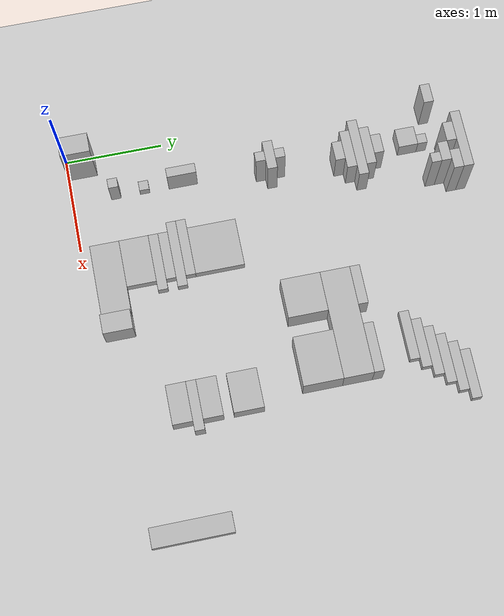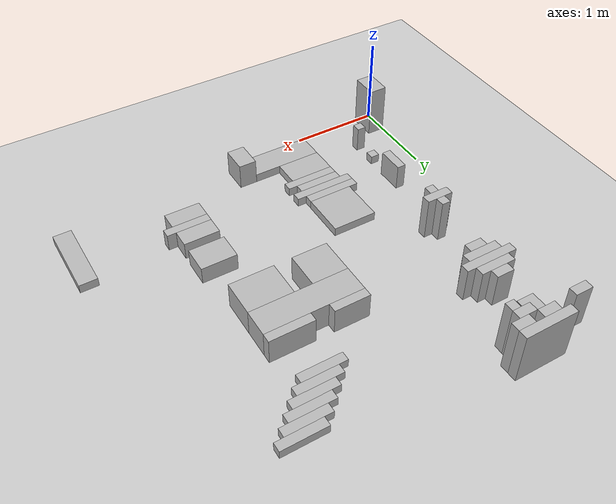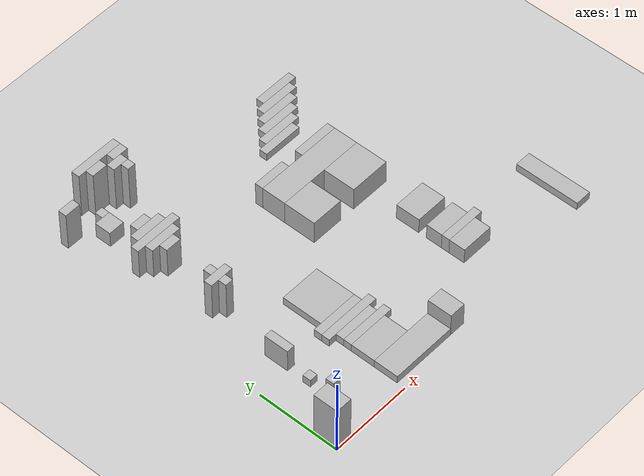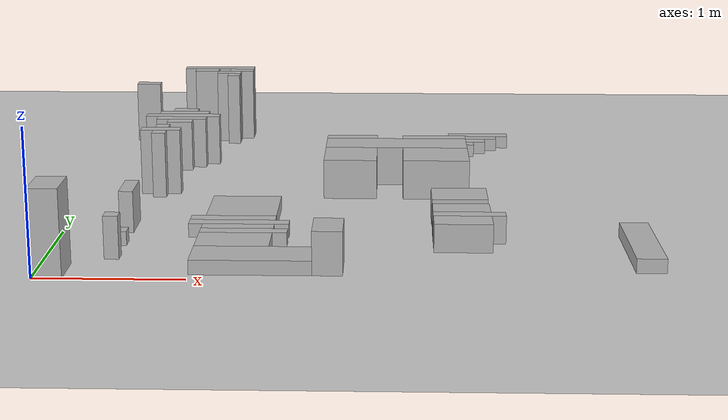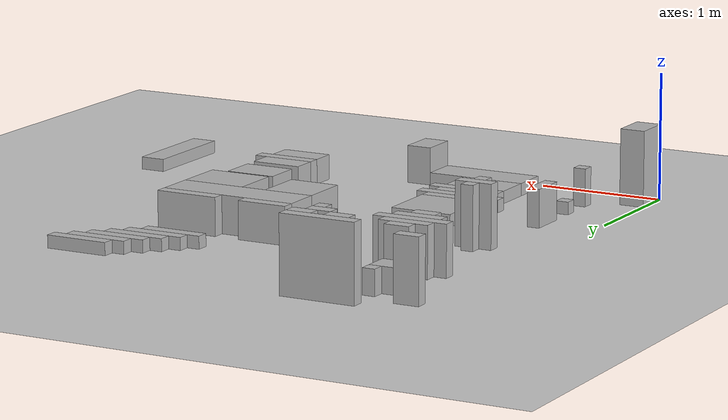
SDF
<?xml version="1.0" ?>
<sdf version="1.6">
  <world name="obstacles">
    <plugin name="gazebo_ros_factory" filename="libgazebo_ros_factory.so"/>

    <!-- A global light source -->
    <include>
      <uri>model://sun</uri>
    </include>
    <!-- A ground plane -->
    <include>
      <uri>model://ground_plane</uri>
    </include>

    <model name="box_0">
      <static>true</static>
      <link name="link_0">
        <visual name="visual_0">
          <pose>0.1 0.15 0.3 0 0 0</pose>
          <geometry>
            <box>
              <size>0.2 0.3 0.6</size>
            </box>
          </geometry>
        </visual>
        <collision name="collision_0">
          <pose>0.1 0.15 0.3 0 0 0</pose>
          <geometry>
            <box>
              <size>0.2 0.3 0.6</size>
            </box>
          </geometry>
        </collision>
      </link>
    </model>

    <model name="box_1">
      <static>true</static>
      <link name="link_1">
        <visual name="visual_1">
          <pose>1.4 0.25 0.05 0 0 0</pose>
          <geometry>
            <box>
              <size>0.8 0.3 0.1</size>
            </box>
          </geometry>
        </visual>
        <collision name="collision_1">
          <pose>1.4 0.25 0.05 0 0 0</pose>
          <geometry>
            <box>
              <size>0.8 0.3 0.1</size>
            </box>
          </geometry>
        </collision>
      </link>
    </model>

    <model name="box_2">
      <static>true</static>
      <link name="link_2">
        <visual name="visual_2">
          <pose>1.9 0.25 0.15 0 0 0</pose>
          <geometry>
            <box>
              <size>0.2 0.3 0.3</size>
            </box>
          </geometry>
        </visual>
        <collision name="collision_2">
          <pose>1.9 0.25 0.15 0 0 0</pose>
          <geometry>
            <box>
              <size>0.2 0.3 0.3</size>
            </box>
          </geometry>
        </collision>
      </link>
    </model>

    <model name="box_3">
      <static>true</static>
      <link name="link_3">
        <visual name="visual_3">
          <pose>4 0.6 0.05 0 0 0</pose>
          <geometry>
            <box>
              <size>0.2 0.8 0.1</size>
            </box>
          </geometry>
        </visual>
        <collision name="collision_3">
          <pose>4 0.6 0.05 0 0 0</pose>
          <geometry>
            <box>
              <size>0.2 0.8 0.1</size>
            </box>
          </geometry>
        </collision>
      </link>
    </model>

    <model name="box_4">
      <static>true</static>
      <link name="link_4">
        <visual name="visual_4">
          <pose>0.45 0.45 0.15 0 0 0</pose>
          <geometry>
            <box>
              <size>0.1 0.1 0.3</size>
            </box>
          </geometry>
        </visual>
        <collision name="collision_4">
          <pose>0.45 0.45 0.15 0 0 0</pose>
          <geometry>
            <box>
              <size>0.1 0.1 0.3</size>
            </box>
          </geometry>
        </collision>
      </link>
    </model>

    <model name="box_5">
      <static>true</static>
      <link name="link_5">
        <visual name="visual_5">
          <pose>1.25 0.55 0.05 0 0 0</pose>
          <geometry>
            <box>
              <size>0.5 0.3 0.1</size>
            </box>
          </geometry>
        </visual>
        <collision name="collision_5">
          <pose>1.25 0.55 0.05 0 0 0</pose>
          <geometry>
            <box>
              <size>0.5 0.3 0.1</size>
            </box>
          </geometry>
        </collision>
      </link>
    </model>

    <model name="box_6">
      <static>true</static>
      <link name="link_6">
        <visual name="visual_6">
          <pose>2.8 0.7 0.1 0 0 0</pose>
          <geometry>
            <box>
              <size>0.4 0.2 0.2</size>
            </box>
          </geometry>
        </visual>
        <collision name="collision_6">
          <pose>2.8 0.7 0.1 0 0 0</pose>
          <geometry>
            <box>
              <size>0.4 0.2 0.2</size>
            </box>
          </geometry>
        </collision>
      </link>
    </model>

    <model name="box_7">
      <static>true</static>
      <link name="link_7">
        <visual name="visual_7">
          <pose>0.45 0.75 0.05 0 0 0</pose>
          <geometry>
            <box>
              <size>0.1 0.1 0.1</size>
            </box>
          </geometry>
        </visual>
        <collision name="collision_7">
          <pose>0.45 0.75 0.05 0 0 0</pose>
          <geometry>
            <box>
              <size>0.1 0.1 0.1</size>
            </box>
          </geometry>
        </collision>
      </link>
    </model>

    <model name="box_8">
      <static>true</static>
      <link name="link_8">
        <visual name="visual_8">
          <pose>1.3 0.75 0.05 0 0 0</pose>
          <geometry>
            <box>
              <size>0.6 0.1 0.1</size>
            </box>
          </geometry>
        </visual>
        <collision name="collision_8">
          <pose>1.3 0.75 0.05 0 0 0</pose>
          <geometry>
            <box>
              <size>0.6 0.1 0.1</size>
            </box>
          </geometry>
        </collision>
      </link>
    </model>

    <model name="box_9">
      <static>true</static>
      <link name="link_9">
        <visual name="visual_9">
          <pose>1.25 0.85 0.05 0 0 0</pose>
          <geometry>
            <box>
              <size>0.5 0.1 0.1</size>
            </box>
          </geometry>
        </visual>
        <collision name="collision_9">
          <pose>1.25 0.85 0.05 0 0 0</pose>
          <geometry>
            <box>
              <size>0.5 0.1 0.1</size>
            </box>
          </geometry>
        </collision>
      </link>
    </model>

    <model name="box_10">
      <static>true</static>
      <link name="link_10">
        <visual name="visual_10">
          <pose>2.85 0.85 0.1 0 0 0</pose>
          <geometry>
            <box>
              <size>0.5 0.1 0.2</size>
            </box>
          </geometry>
        </visual>
        <collision name="collision_10">
          <pose>2.85 0.85 0.1 0 0 0</pose>
          <geometry>
            <box>
              <size>0.5 0.1 0.2</size>
            </box>
          </geometry>
        </collision>
      </link>
    </model>

    <model name="box_11">
      <static>true</static>
      <link name="link_11">
        <visual name="visual_11">
          <pose>1.25 0.95 0.05 0 0 0</pose>
          <geometry>
            <box>
              <size>0.7 0.1 0.1</size>
            </box>
          </geometry>
        </visual>
        <collision name="collision_11">
          <pose>1.25 0.95 0.05 0 0 0</pose>
          <geometry>
            <box>
              <size>0.7 0.1 0.1</size>
            </box>
          </geometry>
        </collision>
      </link>
    </model>

    <model name="box_12">
      <static>true</static>
      <link name="link_12">
        <visual name="visual_12">
          <pose>2.8 1 0.1 0 0 0</pose>
          <geometry>
            <box>
              <size>0.4 0.2 0.2</size>
            </box>
          </geometry>
        </visual>
        <collision name="collision_12">
          <pose>2.8 1 0.1 0 0 0</pose>
          <geometry>
            <box>
              <size>0.4 0.2 0.2</size>
            </box>
          </geometry>
        </collision>
      </link>
    </model>

    <model name="box_13">
      <static>true</static>
      <link name="link_13">
        <visual name="visual_13">
          <pose>0.45 1.15 0.15 0 0 0</pose>
          <geometry>
            <box>
              <size>0.1 0.3 0.3</size>
            </box>
          </geometry>
        </visual>
        <collision name="collision_13">
          <pose>0.45 1.15 0.15 0 0 0</pose>
          <geometry>
            <box>
              <size>0.1 0.3 0.3</size>
            </box>
          </geometry>
        </collision>
      </link>
    </model>

    <model name="box_14">
      <static>true</static>
      <link name="link_14">
        <visual name="visual_14">
          <pose>1.2 1.05 0.05 0 0 0</pose>
          <geometry>
            <box>
              <size>0.6 0.1 0.1</size>
            </box>
          </geometry>
        </visual>
        <collision name="collision_14">
          <pose>1.2 1.05 0.05 0 0 0</pose>
          <geometry>
            <box>
              <size>0.6 0.1 0.1</size>
            </box>
          </geometry>
        </collision>
      </link>
    </model>

    <model name="box_15">
      <static>true</static>
      <link name="link_15">
        <visual name="visual_15">
          <pose>1.25 1.35 0.05 0 0 0</pose>
          <geometry>
            <box>
              <size>0.5 0.5 0.1</size>
            </box>
          </geometry>
        </visual>
        <collision name="collision_15">
          <pose>1.25 1.35 0.05 0 0 0</pose>
          <geometry>
            <box>
              <size>0.5 0.5 0.1</size>
            </box>
          </geometry>
        </collision>
      </link>
    </model>

    <model name="box_16">
      <static>true</static>
      <link name="link_16">
        <visual name="visual_16">
          <pose>2.8 1.35 0.1 0 0 0</pose>
          <geometry>
            <box>
              <size>0.4 0.3 0.2</size>
            </box>
          </geometry>
        </visual>
        <collision name="collision_16">
          <pose>2.8 1.35 0.1 0 0 0</pose>
          <geometry>
            <box>
              <size>0.4 0.3 0.2</size>
            </box>
          </geometry>
        </collision>
      </link>
    </model>

    <model name="box_17">
      <static>true</static>
      <link name="link_17">
        <visual name="visual_17">
          <pose>0.55 1.95 0.25 0 0 0</pose>
          <geometry>
            <box>
              <size>0.1 0.1 0.5</size>
            </box>
          </geometry>
        </visual>
        <collision name="collision_17">
          <pose>0.55 1.95 0.25 0 0 0</pose>
          <geometry>
            <box>
              <size>0.1 0.1 0.5</size>
            </box>
          </geometry>
        </collision>
      </link>
    </model>

    <model name="box_18">
      <static>true</static>
      <link name="link_18">
        <visual name="visual_18">
          <pose>2 2.1 0.15 0 0 0</pose>
          <geometry>
            <box>
              <size>0.4 0.4 0.3</size>
            </box>
          </geometry>
        </visual>
        <collision name="collision_18">
          <pose>2 2.1 0.15 0 0 0</pose>
          <geometry>
            <box>
              <size>0.4 0.4 0.3</size>
            </box>
          </geometry>
        </collision>
      </link>
    </model>

    <model name="box_19">
      <static>true</static>
      <link name="link_19">
        <visual name="visual_19">
          <pose>2.65 2.1 0.15 0 0 0</pose>
          <geometry>
            <box>
              <size>0.5 0.4 0.3</size>
            </box>
          </geometry>
        </visual>
        <collision name="collision_19">
          <pose>2.65 2.1 0.15 0 0 0</pose>
          <geometry>
            <box>
              <size>0.5 0.4 0.3</size>
            </box>
          </geometry>
        </collision>
      </link>
    </model>

    <model name="box_20">
      <static>true</static>
      <link name="link_20">
        <visual name="visual_20">
          <pose>0.55 2.05 0.25 0 0 0</pose>
          <geometry>
            <box>
              <size>0.3 0.1 0.5</size>
            </box>
          </geometry>
        </visual>
        <collision name="collision_20">
          <pose>0.55 2.05 0.25 0 0 0</pose>
          <geometry>
            <box>
              <size>0.3 0.1 0.5</size>
            </box>
          </geometry>
        </collision>
      </link>
    </model>

    <model name="box_21">
      <static>true</static>
      <link name="link_21">
        <visual name="visual_21">
          <pose>0.55 2.15 0.25 0 0 0</pose>
          <geometry>
            <box>
              <size>0.1 0.1 0.5</size>
            </box>
          </geometry>
        </visual>
        <collision name="collision_21">
          <pose>0.55 2.15 0.25 0 0 0</pose>
          <geometry>
            <box>
              <size>0.1 0.1 0.5</size>
            </box>
          </geometry>
        </collision>
      </link>
    </model>

    <model name="box_22">
      <static>true</static>
      <link name="link_22">
        <visual name="visual_22">
          <pose>2.35 2.45 0.15 0 0 0</pose>
          <geometry>
            <box>
              <size>1.1 0.3 0.3</size>
            </box>
          </geometry>
        </visual>
        <collision name="collision_22">
          <pose>2.35 2.45 0.15 0 0 0</pose>
          <geometry>
            <box>
              <size>1.1 0.3 0.3</size>
            </box>
          </geometry>
        </collision>
      </link>
    </model>

    <model name="box_23">
      <static>true</static>
      <link name="link_23">
        <visual name="visual_23">
          <pose>2 2.65 0.15 0 0 0</pose>
          <geometry>
            <box>
              <size>0.4 0.1 0.3</size>
            </box>
          </geometry>
        </visual>
        <collision name="collision_23">
          <pose>2 2.65 0.15 0 0 0</pose>
          <geometry>
            <box>
              <size>0.4 0.1 0.3</size>
            </box>
          </geometry>
        </collision>
      </link>
    </model>

    <model name="box_24">
      <static>true</static>
      <link name="link_24">
        <visual name="visual_24">
          <pose>2.65 2.65 0.15 0 0 0</pose>
          <geometry>
            <box>
              <size>0.5 0.1 0.3</size>
            </box>
          </geometry>
        </visual>
        <collision name="collision_24">
          <pose>2.65 2.65 0.15 0 0 0</pose>
          <geometry>
            <box>
              <size>0.5 0.1 0.3</size>
            </box>
          </geometry>
        </collision>
      </link>
    </model>

    <model name="box_25">
      <static>true</static>
      <link name="link_25">
        <visual name="visual_25">
          <pose>0.6 2.75 0.2 0 0 0</pose>
          <geometry>
            <box>
              <size>0.2 0.1 0.4</size>
            </box>
          </geometry>
        </visual>
        <collision name="collision_25">
          <pose>0.6 2.75 0.2 0 0 0</pose>
          <geometry>
            <box>
              <size>0.2 0.1 0.4</size>
            </box>
          </geometry>
        </collision>
      </link>
    </model>

    <model name="box_26">
      <static>true</static>
      <link name="link_26">
        <visual name="visual_26">
          <pose>0.6 2.85 0.2 0 0 0</pose>
          <geometry>
            <box>
              <size>0.4 0.1 0.4</size>
            </box>
          </geometry>
        </visual>
        <collision name="collision_26">
          <pose>0.6 2.85 0.2 0 0 0</pose>
          <geometry>
            <box>
              <size>0.4 0.1 0.4</size>
            </box>
          </geometry>
        </collision>
      </link>
    </model>

    <model name="box_27">
      <static>true</static>
      <link name="link_27">
        <visual name="visual_27">
          <pose>0.6 2.95 0.2 0 0 0</pose>
          <geometry>
            <box>
              <size>0.6 0.1 0.4</size>
            </box>
          </geometry>
        </visual>
        <collision name="collision_27">
          <pose>0.6 2.95 0.2 0 0 0</pose>
          <geometry>
            <box>
              <size>0.6 0.1 0.4</size>
            </box>
          </geometry>
        </collision>
      </link>
    </model>

    <model name="box_28">
      <static>true</static>
      <link name="link_28">
        <visual name="visual_28">
          <pose>0.6 3.05 0.2 0 0 0</pose>
          <geometry>
            <box>
              <size>0.4 0.1 0.4</size>
            </box>
          </geometry>
        </visual>
        <collision name="collision_28">
          <pose>0.6 3.05 0.2 0 0 0</pose>
          <geometry>
            <box>
              <size>0.4 0.1 0.4</size>
            </box>
          </geometry>
        </collision>
      </link>
    </model>

    <model name="box_29">
      <static>true</static>
      <link name="link_29">
        <visual name="visual_29">
          <pose>2.55 3.05 0.05 0 0 0</pose>
          <geometry>
            <box>
              <size>0.5 0.1 0.1</size>
            </box>
          </geometry>
        </visual>
        <collision name="collision_29">
          <pose>2.55 3.05 0.05 0 0 0</pose>
          <geometry>
            <box>
              <size>0.5 0.1 0.1</size>
            </box>
          </geometry>
        </collision>
      </link>
    </model>

    <model name="box_30">
      <static>true</static>
      <link name="link_30">
        <visual name="visual_30">
          <pose>0.6 3.15 0.2 0 0 0</pose>
          <geometry>
            <box>
              <size>0.2 0.1 0.4</size>
            </box>
          </geometry>
        </visual>
        <collision name="collision_30">
          <pose>0.6 3.15 0.2 0 0 0</pose>
          <geometry>
            <box>
              <size>0.2 0.1 0.4</size>
            </box>
          </geometry>
        </collision>
      </link>
    </model>

    <model name="box_31">
      <static>true</static>
      <link name="link_31">
        <visual name="visual_31">
          <pose>2.65 3.15 0.05 0 0 0</pose>
          <geometry>
            <box>
              <size>0.5 0.1 0.1</size>
            </box>
          </geometry>
        </visual>
        <collision name="collision_31">
          <pose>2.65 3.15 0.05 0 0 0</pose>
          <geometry>
            <box>
              <size>0.5 0.1 0.1</size>
            </box>
          </geometry>
        </collision>
      </link>
    </model>

    <model name="box_32">
      <static>true</static>
      <link name="link_32">
        <visual name="visual_32">
          <pose>2.75 3.25 0.05 0 0 0</pose>
          <geometry>
            <box>
              <size>0.5 0.1 0.1</size>
            </box>
          </geometry>
        </visual>
        <collision name="collision_32">
          <pose>2.75 3.25 0.05 0 0 0</pose>
          <geometry>
            <box>
              <size>0.5 0.1 0.1</size>
            </box>
          </geometry>
        </collision>
      </link>
    </model>

    <model name="box_33">
      <static>true</static>
      <link name="link_33">
        <visual name="visual_33">
          <pose>2.85 3.35 0.05 0 0 0</pose>
          <geometry>
            <box>
              <size>0.5 0.1 0.1</size>
            </box>
          </geometry>
        </visual>
        <collision name="collision_33">
          <pose>2.85 3.35 0.05 0 0 0</pose>
          <geometry>
            <box>
              <size>0.5 0.1 0.1</size>
            </box>
          </geometry>
        </collision>
      </link>
    </model>

    <model name="box_34">
      <static>true</static>
      <link name="link_34">
        <visual name="visual_34">
          <pose>0.5 3.5 0.1 0 0 0</pose>
          <geometry>
            <box>
              <size>0.2 0.2 0.2</size>
            </box>
          </geometry>
        </visual>
        <collision name="collision_34">
          <pose>0.5 3.5 0.1 0 0 0</pose>
          <geometry>
            <box>
              <size>0.2 0.2 0.2</size>
            </box>
          </geometry>
        </collision>
      </link>
    </model>

    <model name="box_35">
      <static>true</static>
      <link name="link_35">
        <visual name="visual_35">
          <pose>2.95 3.45 0.05 0 0 0</pose>
          <geometry>
            <box>
              <size>0.5 0.1 0.1</size>
            </box>
          </geometry>
        </visual>
        <collision name="collision_35">
          <pose>2.95 3.45 0.05 0 0 0</pose>
          <geometry>
            <box>
              <size>0.5 0.1 0.1</size>
            </box>
          </geometry>
        </collision>
      </link>
    </model>

    <model name="box_36">
      <static>true</static>
      <link name="link_36">
        <visual name="visual_36">
          <pose>3.05 3.55 0.05 0 0 0</pose>
          <geometry>
            <box>
              <size>0.5 0.1 0.1</size>
            </box>
          </geometry>
        </visual>
        <collision name="collision_36">
          <pose>3.05 3.55 0.05 0 0 0</pose>
          <geometry>
            <box>
              <size>0.5 0.1 0.1</size>
            </box>
          </geometry>
        </collision>
      </link>
    </model>

    <model name="box_37">
      <static>true</static>
      <link name="link_37">
        <visual name="visual_37">
          <pose>0.55 3.65 0.1 0 0 0</pose>
          <geometry>
            <box>
              <size>0.1 0.1 0.2</size>
            </box>
          </geometry>
        </visual>
        <collision name="collision_37">
          <pose>0.55 3.65 0.1 0 0 0</pose>
          <geometry>
            <box>
              <size>0.1 0.1 0.2</size>
            </box>
          </geometry>
        </collision>
      </link>
    </model>

    <model name="box_38">
      <static>true</static>
      <link name="link_38">
        <visual name="visual_38">
          <pose>0.95 3.65 0.3 0 0 0</pose>
          <geometry>
            <box>
              <size>0.1 0.1 0.6</size>
            </box>
          </geometry>
        </visual>
        <collision name="collision_38">
          <pose>0.95 3.65 0.3 0 0 0</pose>
          <geometry>
            <box>
              <size>0.1 0.1 0.6</size>
            </box>
          </geometry>
        </collision>
      </link>
    </model>

    <model name="box_39">
      <static>true</static>
      <link name="link_39">
        <visual name="visual_39">
          <pose>0.2 3.75 0.25 0 0 0</pose>
          <geometry>
            <box>
              <size>0.2 0.1 0.5</size>
            </box>
          </geometry>
        </visual>
        <collision name="collision_39">
          <pose>0.2 3.75 0.25 0 0 0</pose>
          <geometry>
            <box>
              <size>0.2 0.1 0.5</size>
            </box>
          </geometry>
        </collision>
      </link>
    </model>

    <model name="box_40">
      <static>true</static>
      <link name="link_40">
        <visual name="visual_40">
          <pose>0.9 3.75 0.3 0 0 0</pose>
          <geometry>
            <box>
              <size>0.2 0.1 0.6</size>
            </box>
          </geometry>
        </visual>
        <collision name="collision_40">
          <pose>0.9 3.75 0.3 0 0 0</pose>
          <geometry>
            <box>
              <size>0.2 0.1 0.6</size>
            </box>
          </geometry>
        </collision>
      </link>
    </model>

    <model name="box_41">
      <static>true</static>
      <link name="link_41">
        <visual name="visual_41">
          <pose>0.7 3.85 0.3 0 0 0</pose>
          <geometry>
            <box>
              <size>0.2 0.1 0.6</size>
            </box>
          </geometry>
        </visual>
        <collision name="collision_41">
          <pose>0.7 3.85 0.3 0 0 0</pose>
          <geometry>
            <box>
              <size>0.2 0.1 0.6</size>
            </box>
          </geometry>
        </collision>
      </link>
    </model>

    <model name="box_42">
      <static>true</static>
      <link name="link_42">
        <visual name="visual_42">
          <pose>1 3.85 0.3 0 0 0</pose>
          <geometry>
            <box>
              <size>0.2 0.1 0.6</size>
            </box>
          </geometry>
        </visual>
        <collision name="collision_42">
          <pose>1 3.85 0.3 0 0 0</pose>
          <geometry>
            <box>
              <size>0.2 0.1 0.6</size>
            </box>
          </geometry>
        </collision>
      </link>
    </model>

    <model name="box_43">
      <static>true</static>
      <link name="link_43">
        <visual name="visual_43">
          <pose>0.8 3.95 0.3 0 0 0</pose>
          <geometry>
            <box>
              <size>0.6 0.1 0.6</size>
            </box>
          </geometry>
        </visual>
        <collision name="collision_43">
          <pose>0.8 3.95 0.3 0 0 0</pose>
          <geometry>
            <box>
              <size>0.6 0.1 0.6</size>
            </box>
          </geometry>
        </collision>
      </link>
    </model>

  </world>
</sdf>
